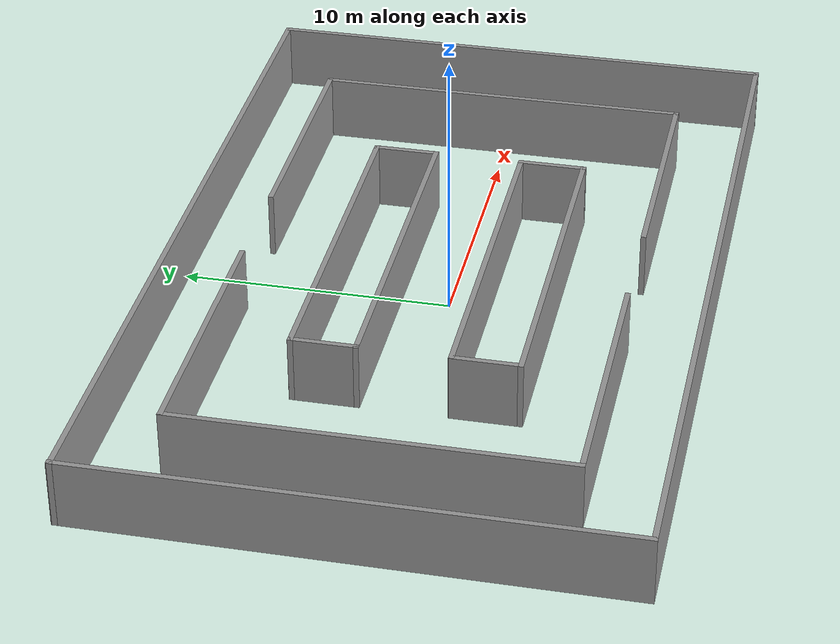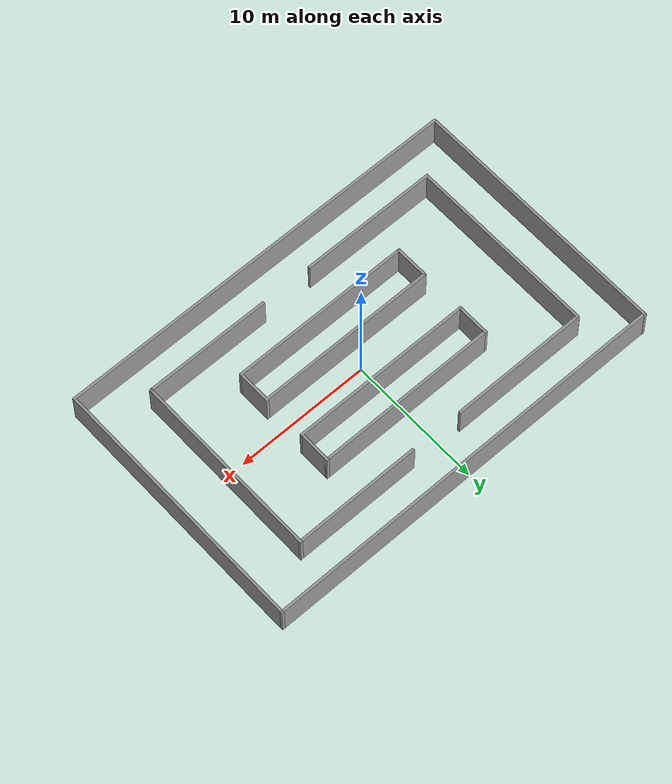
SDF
<?xml version='1.0'?>
<sdf version='1.4'>
  <model name='maze'>
    <link name='Wall_11'>
      <collision name='Wall_11_Collision'>
        <geometry>
          <box>
            <size>9.45224 0.2 2.5</size>
          </box>
        </geometry>
        <pose>0 0 1.25 0 -0 0</pose>
      </collision>
      <visual name='Wall_11_Visual'>
        <pose>0 0 1.25 0 -0 0</pose>
        <geometry>
          <box>
            <size>9.45224 0.2 2.5</size>
          </box>
        </geometry>
        <material>
          <script>
            <uri>file://media/materials/scripts/gazebo.material</uri>
            <name>Gazebo/Grey</name>
          </script>
        </material>
      </visual>
      <velocity_decay>
        <linear>0</linear>
        <angular>0</angular>
      </velocity_decay>
      <pose>6.91219 -6.76448 0 0 -0 0</pose>
    </link>
    <link name='Wall_12'>
      <collision name='Wall_12_Collision'>
        <geometry>
          <box>
            <size>14.194 0.2 2.5</size>
          </box>
        </geometry>
        <pose>0 0 1.25 0 -0 0</pose>
      </collision>
      <visual name='Wall_12_Visual'>
        <pose>0 0 1.25 0 -0 0</pose>
        <geometry>
          <box>
            <size>14.194 0.2 2.5</size>
          </box>
        </geometry>
        <material>
          <script>
            <uri>file://media/materials/scripts/gazebo.material</uri>
            <name>Gazebo/Grey</name>
          </script>
        </material>
      </visual>
      <velocity_decay>
        <linear>0</linear>
        <angular>0</angular>
      </velocity_decay>
      <pose>11.5383 0.232534 0 0 -0 1.5708</pose>
    </link>
    <link name='Wall_13'>
      <collision name='Wall_13_Collision'>
        <geometry>
          <box>
            <size>9.45224 0.2 2.5</size>
          </box>
        </geometry>
        <pose>0 0 1.25 0 -0 0</pose>
      </collision>
      <visual name='Wall_13_Visual'>
        <pose>0 0 1.25 0 -0 0</pose>
        <geometry>
          <box>
            <size>9.45224 0.2 2.5</size>
          </box>
        </geometry>
        <material>
          <script>
            <uri>file://media/materials/scripts/gazebo.material</uri>
            <name>Gazebo/Grey</name>
          </script>
        </material>
      </visual>
      <velocity_decay>
        <linear>0</linear>
        <angular>0</angular>
      </velocity_decay>
      <pose>6.91219 7.22954 0 0 -0 3.14159</pose>
    </link>
    <link name='Wall_17'>
      <collision name='Wall_17_Collision'>
        <geometry>
          <box>
            <size>10.2618 0.2 2.5</size>
          </box>
        </geometry>
        <pose>0 0 1.25 0 -0 0</pose>
      </collision>
      <visual name='Wall_17_Visual'>
        <pose>0 0 1.25 0 -0 0</pose>
        <geometry>
          <box>
            <size>10.2618 0.2 2.5</size>
          </box>
        </geometry>
        <material>
          <script>
            <uri>file://media/materials/scripts/gazebo.material</uri>
            <name>Gazebo/Grey</name>
          </script>
        </material>
      </visual>
      <velocity_decay>
        <linear>0</linear>
        <angular>0</angular>
      </velocity_decay>
      <pose>-6.74644 7.2758 0 0 -0 0</pose>
    </link>
    <link name='Wall_19'>
      <collision name='Wall_19_Collision'>
        <geometry>
          <box>
            <size>2.48993 0.2 2.5</size>
          </box>
        </geometry>
        <pose>0 0 1.25 0 -0 0</pose>
      </collision>
      <visual name='Wall_19_Visual'>
        <pose>0 0 1.25 0 -0 0</pose>
        <geometry>
          <box>
            <size>2.48993 0.2 2.5</size>
          </box>
        </geometry>
        <material>
          <script>
            <uri>file://media/materials/scripts/gazebo.material</uri>
            <name>Gazebo/Grey</name>
          </script>
        </material>
      </visual>
      <velocity_decay>
        <linear>0</linear>
        <angular>0</angular>
      </velocity_decay>
      <pose>-6.73487 3.03134 0 0 -0 1.5708</pose>
    </link>
    <link name='Wall_2'>
      <collision name='Wall_2_Collision'>
        <geometry>
          <box>
            <size>19.6991 0.2 2.5</size>
          </box>
        </geometry>
        <pose>0 0 1.25 0 -0 0</pose>
      </collision>
      <visual name='Wall_2_Visual'>
        <pose>0 0 1.25 0 -0 0</pose>
        <geometry>
          <box>
            <size>19.6991 0.2 2.5</size>
          </box>
        </geometry>
        <material>
          <script>
            <uri>file://media/materials/scripts/gazebo.material</uri>
            <name>Gazebo/Grey</name>
          </script>
        </material>
      </visual>
      <velocity_decay>
        <linear>0</linear>
        <angular>0</angular>
      </velocity_decay>
      <pose>-15.053 0.241862 0 0 0 -1.5708</pose>
    </link>
    <link name='Wall_20'>
      <collision name='Wall_20_Collision'>
        <geometry>
          <box>
            <size>13.5695 0.2 2.5</size>
          </box>
        </geometry>
        <pose>0 0 1.25 0 -0 0</pose>
      </collision>
      <visual name='Wall_20_Visual'>
        <pose>0 0 1.25 0 -0 0</pose>
        <geometry>
          <box>
            <size>13.5695 0.2 2.5</size>
          </box>
        </geometry>
        <material>
          <script>
            <uri>file://media/materials/scripts/gazebo.material</uri>
            <name>Gazebo/Grey</name>
          </script>
        </material>
      </visual>
      <velocity_decay>
        <linear>0</linear>
        <angular>0</angular>
      </velocity_decay>
      <pose>-0.050127 4.1763 0 0 -0 0</pose>
    </link>
    <link name='Wall_21'>
      <collision name='Wall_21_Collision'>
        <geometry>
          <box>
            <size>2.37428 0.2 2.5</size>
          </box>
        </geometry>
        <pose>0 0 1.25 0 -0 0</pose>
      </collision>
      <visual name='Wall_21_Visual'>
        <pose>0 0 1.25 0 -0 0</pose>
        <geometry>
          <box>
            <size>2.37428 0.2 2.5</size>
          </box>
        </geometry>
        <material>
          <script>
            <uri>file://media/materials/scripts/gazebo.material</uri>
            <name>Gazebo/Grey</name>
          </script>
        </material>
      </visual>
      <velocity_decay>
        <linear>0</linear>
        <angular>0</angular>
      </velocity_decay>
      <pose>6.63462 3.08916 0 0 0 -1.5708</pose>
    </link>
    <link name='Wall_23'>
      <collision name='Wall_23_Collision'>
        <geometry>
          <box>
            <size>2.58245 0.2 2.5</size>
          </box>
        </geometry>
        <pose>0 0 1.25 0 -0 0</pose>
      </collision>
      <visual name='Wall_23_Visual'>
        <pose>0 0 1.25 0 -0 0</pose>
        <geometry>
          <box>
            <size>2.58245 0.2 2.5</size>
          </box>
        </geometry>
        <material>
          <script>
            <uri>file://media/materials/scripts/gazebo.material</uri>
            <name>Gazebo/Grey</name>
          </script>
        </material>
      </visual>
      <velocity_decay>
        <linear>0</linear>
        <angular>0</angular>
      </velocity_decay>
      <pose>-6.71174 -2.65879 0 0 0 -1.5708</pose>
    </link>
    <link name='Wall_24'>
      <collision name='Wall_24_Collision'>
        <geometry>
          <box>
            <size>13.5464 0.2 2.5</size>
          </box>
        </geometry>
        <pose>0 0 1.25 0 -0 0</pose>
      </collision>
      <visual name='Wall_24_Visual'>
        <pose>0 0 1.25 0 -0 0</pose>
        <geometry>
          <box>
            <size>13.5464 0.2 2.5</size>
          </box>
        </geometry>
        <material>
          <script>
            <uri>file://media/materials/scripts/gazebo.material</uri>
            <name>Gazebo/Grey</name>
          </script>
        </material>
      </visual>
      <velocity_decay>
        <linear>0</linear>
        <angular>0</angular>
      </velocity_decay>
      <pose>-0.038562 -3.85002 0 0 -0 0</pose>
    </link>
    <link name='Wall_25'>
      <collision name='Wall_25_Collision'>
        <geometry>
          <box>
            <size>2.60558 0.2 2.5</size>
          </box>
        </geometry>
        <pose>0 0 1.25 0 -0 0</pose>
      </collision>
      <visual name='Wall_25_Visual'>
        <pose>0 0 1.25 0 -0 0</pose>
        <geometry>
          <box>
            <size>2.60558 0.2 2.5</size>
          </box>
        </geometry>
        <material>
          <script>
            <uri>file://media/materials/scripts/gazebo.material</uri>
            <name>Gazebo/Grey</name>
          </script>
        </material>
      </visual>
      <velocity_decay>
        <linear>0</linear>
        <angular>0</angular>
      </velocity_decay>
      <pose>6.63462 -2.64723 0 0 -0 1.5708</pose>
    </link>
    <link name='Wall_26'>
      <collision name='Wall_26_Collision'>
        <geometry>
          <box>
            <size>13.5232 0.2 2.5</size>
          </box>
        </geometry>
        <pose>0 0 1.25 0 -0 0</pose>
      </collision>
      <visual name='Wall_26_Visual'>
        <pose>0 0 1.25 0 -0 0</pose>
        <geometry>
          <box>
            <size>13.5232 0.2 2.5</size>
          </box>
        </geometry>
        <material>
          <script>
            <uri>file://media/materials/scripts/gazebo.material</uri>
            <name>Gazebo/Grey</name>
          </script>
        </material>
      </visual>
      <velocity_decay>
        <linear>0</linear>
        <angular>0</angular>
      </velocity_decay>
      <pose>-0.026997 -1.44443 0 0 -0 3.14159</pose>
    </link>
    <link name='Wall_28'>
      <collision name='Wall_28_Collision'>
        <geometry>
          <box>
            <size>13.5695 0.2 2.5</size>
          </box>
        </geometry>
        <pose>0 0 1.25 0 -0 0</pose>
      </collision>
      <visual name='Wall_28_Visual'>
        <pose>0 0 1.25 0 -0 0</pose>
        <geometry>
          <box>
            <size>13.5695 0.2 2.5</size>
          </box>
        </geometry>
        <material>
          <script>
            <uri>file://media/materials/scripts/gazebo.material</uri>
            <name>Gazebo/Grey</name>
          </script>
        </material>
      </visual>
      <velocity_decay>
        <linear>0</linear>
        <angular>0</angular>
      </velocity_decay>
      <pose>-0.050127 1.86324 0 0 -0 0</pose>
    </link>
    <link name='Wall_3'>
      <collision name='Wall_3_Collision'>
        <geometry>
          <box>
            <size>30.7093 0.2 2.5</size>
          </box>
        </geometry>
        <pose>0 0 1.25 0 -0 0</pose>
      </collision>
      <visual name='Wall_3_Visual'>
        <pose>0 0 1.25 0 -0 0</pose>
        <geometry>
          <box>
            <size>30.7093 0.2 2.5</size>
          </box>
        </geometry>
        <material>
          <script>
            <uri>file://media/materials/scripts/gazebo.material</uri>
            <name>Gazebo/Grey</name>
          </script>
        </material>
      </visual>
      <velocity_decay>
        <linear>0</linear>
        <angular>0</angular>
      </velocity_decay>
      <pose>0.201648 -9.50769 0 0 -0 0</pose>
    </link>
    <link name='Wall_4'>
      <collision name='Wall_4_Collision'>
        <geometry>
          <box>
            <size>19.676 0.2 2.5</size>
          </box>
        </geometry>
        <pose>0 0 1.25 0 -0 0</pose>
      </collision>
      <visual name='Wall_4_Visual'>
        <pose>0 0 1.25 0 -0 0</pose>
        <geometry>
          <box>
            <size>19.676 0.2 2.5</size>
          </box>
        </geometry>
        <material>
          <script>
            <uri>file://media/materials/scripts/gazebo.material</uri>
            <name>Gazebo/Grey</name>
          </script>
        </material>
      </visual>
      <velocity_decay>
        <linear>0</linear>
        <angular>0</angular>
      </velocity_decay>
      <pose>15.4563 0.230297 0 0 -0 1.5708</pose>
    </link>
    <link name='Wall_5'>
      <collision name='Wall_5_Collision'>
        <geometry>
          <box>
            <size>30.7093 0.2 2.5</size>
          </box>
        </geometry>
        <pose>0 0 1.25 0 -0 0</pose>
      </collision>
      <visual name='Wall_5_Visual'>
        <pose>0 0 1.25 0 -0 0</pose>
        <geometry>
          <box>
            <size>30.7093 0.2 2.5</size>
          </box>
        </geometry>
        <material>
          <script>
            <uri>file://media/materials/scripts/gazebo.material</uri>
            <name>Gazebo/Grey</name>
          </script>
        </material>
      </visual>
      <velocity_decay>
        <linear>0</linear>
        <angular>0</angular>
      </velocity_decay>
      <pose>0.201648 9.96828 0 0 -0 3.14159</pose>
    </link>
    <link name='Wall_8'>
      <collision name='Wall_8_Collision'>
        <geometry>
          <box>
            <size>14.2171 0.2 2.5</size>
          </box>
        </geometry>
        <pose>0 0 1.25 0 -0 0</pose>
      </collision>
      <visual name='Wall_8_Visual'>
        <pose>0 0 1.25 0 -0 0</pose>
        <geometry>
          <box>
            <size>14.2171 0.2 2.5</size>
          </box>
        </geometry>
        <material>
          <script>
            <uri>file://media/materials/scripts/gazebo.material</uri>
            <name>Gazebo/Grey</name>
          </script>
        </material>
      </visual>
      <velocity_decay>
        <linear>0</linear>
        <angular>0</angular>
      </velocity_decay>
      <pose>-11.8005 0.26723 0 0 0 -1.5708</pose>
    </link>
    <link name='Wall_9'>
      <collision name='Wall_9_Collision'>
        <geometry>
          <box>
            <size>10.3081 0.2 2.5</size>
          </box>
        </geometry>
        <pose>0 0 1.25 0 -0 0</pose>
      </collision>
      <visual name='Wall_9_Visual'>
        <pose>0 0 1.25 0 -0 0</pose>
        <geometry>
          <box>
            <size>10.3081 0.2 2.5</size>
          </box>
        </geometry>
        <material>
          <script>
            <uri>file://media/materials/scripts/gazebo.material</uri>
            <name>Gazebo/Grey</name>
          </script>
        </material>
      </visual>
      <velocity_decay>
        <linear>0</linear>
        <angular>0</angular>
      </velocity_decay>
      <pose>-6.74644 -6.74134 0 0 -0 0</pose>
    </link>
    <static>1</static>
  </model>
</sdf>
